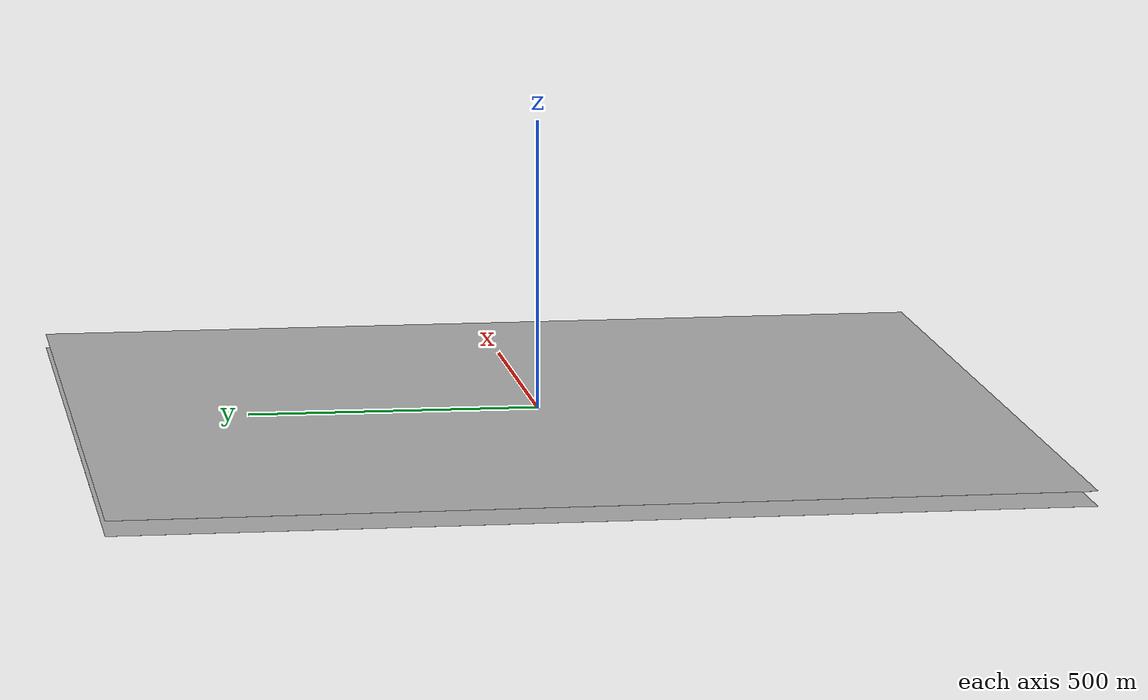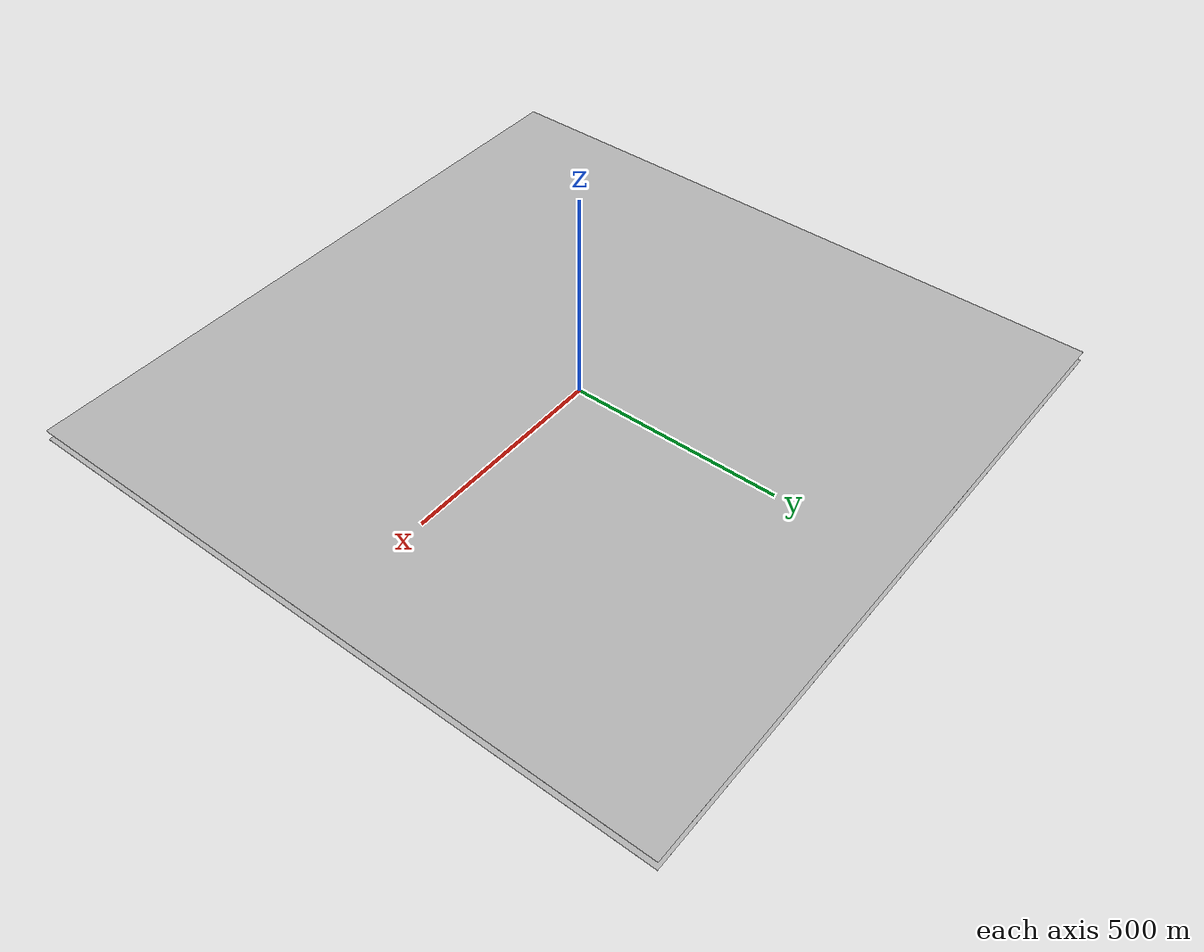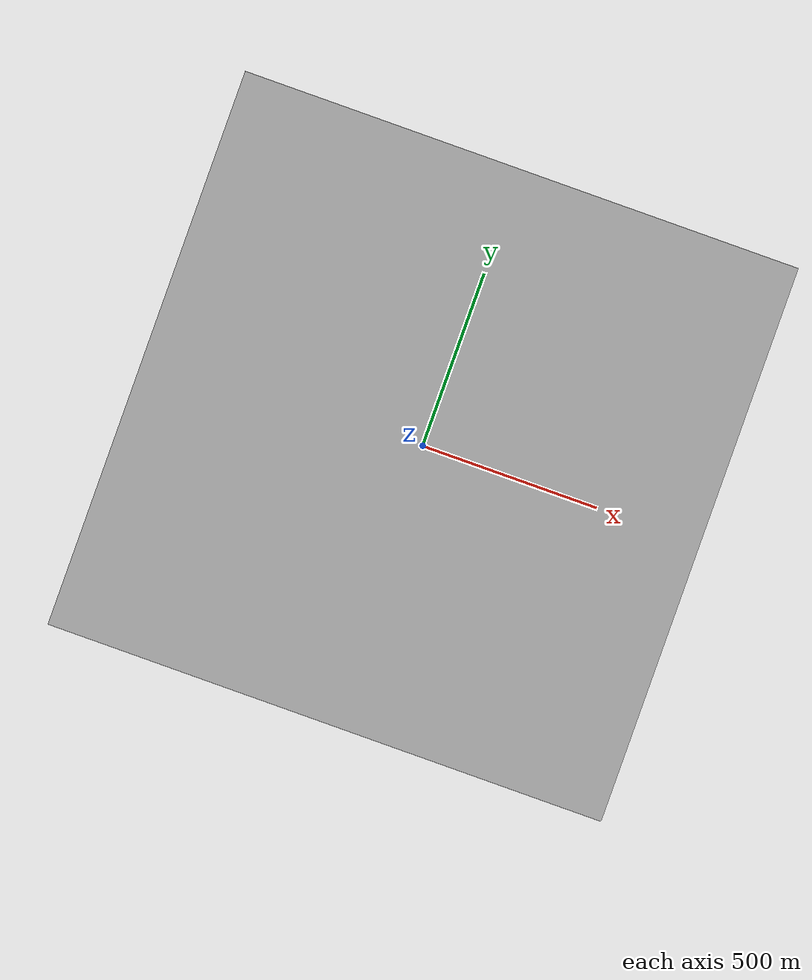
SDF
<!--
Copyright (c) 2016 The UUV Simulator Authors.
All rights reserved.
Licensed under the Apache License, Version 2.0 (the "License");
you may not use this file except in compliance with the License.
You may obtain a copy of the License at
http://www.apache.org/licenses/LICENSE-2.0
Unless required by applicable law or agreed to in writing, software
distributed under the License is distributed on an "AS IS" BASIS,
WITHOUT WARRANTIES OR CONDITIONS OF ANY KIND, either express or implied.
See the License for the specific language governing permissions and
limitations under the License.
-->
<?xml version="1.0" ?>
<sdf version="1.6">
  <model name="ocean_atlantic">
    <static>true</static>
    <link name="link">
      <visual name="ground">
        <cast_shadows>false</cast_shadows>
        <pose>0 0 -25 0 0 0</pose>
        <geometry>
          <box>
            <size>1600 1600 .1</size>
          </box>
        </geometry>
        <material>
          <script>
            <uri>file://Media/materials/scripts/sand.material</uri>
            <name>UUVSimulator/SandAndStones</name>
          </script>
        </material>
      </visual>

      <collision name="ground">
        <pose>0 0 -25 0 0 0</pose>
        <geometry>
          <box>
            <size>1600 1600 .1</size>
          </box>
        </geometry>
      </collision>

      <visual name="surface">
        <cast_shadows>false</cast_shadows>
        <pose>0 0 0 0 0 0</pose>
        <geometry>
          <box>
            <size>1600 1600 .1</size>
          </box>
        </geometry>
        <material>
          <script>
            <uri>file://Media/materials/scripts/water.material</uri>
            <name>UUVSimulator/StaticDeepWater</name>
          </script>
        </material>
      </visual>
    </link>
  </model>
</sdf>
